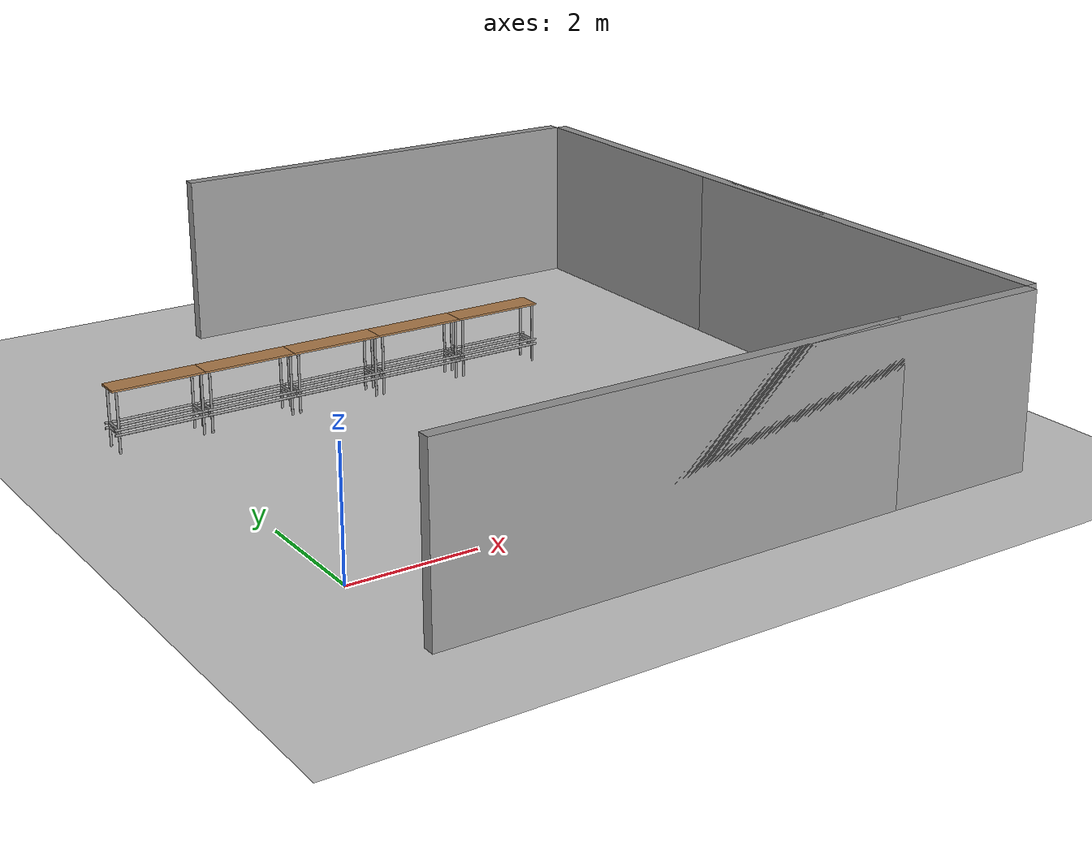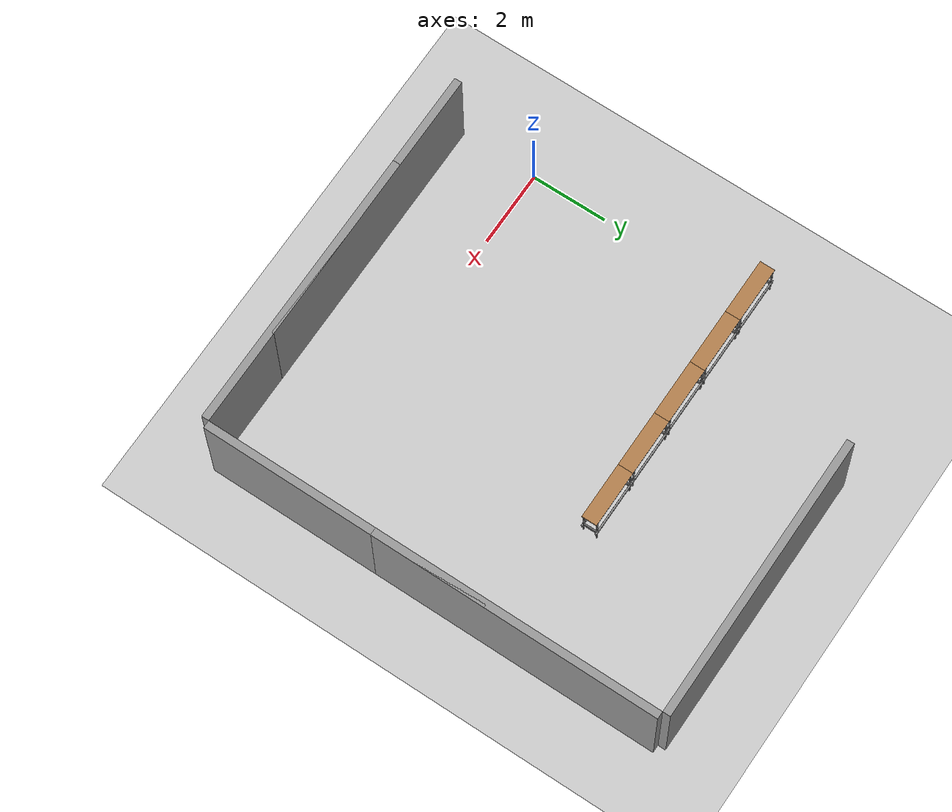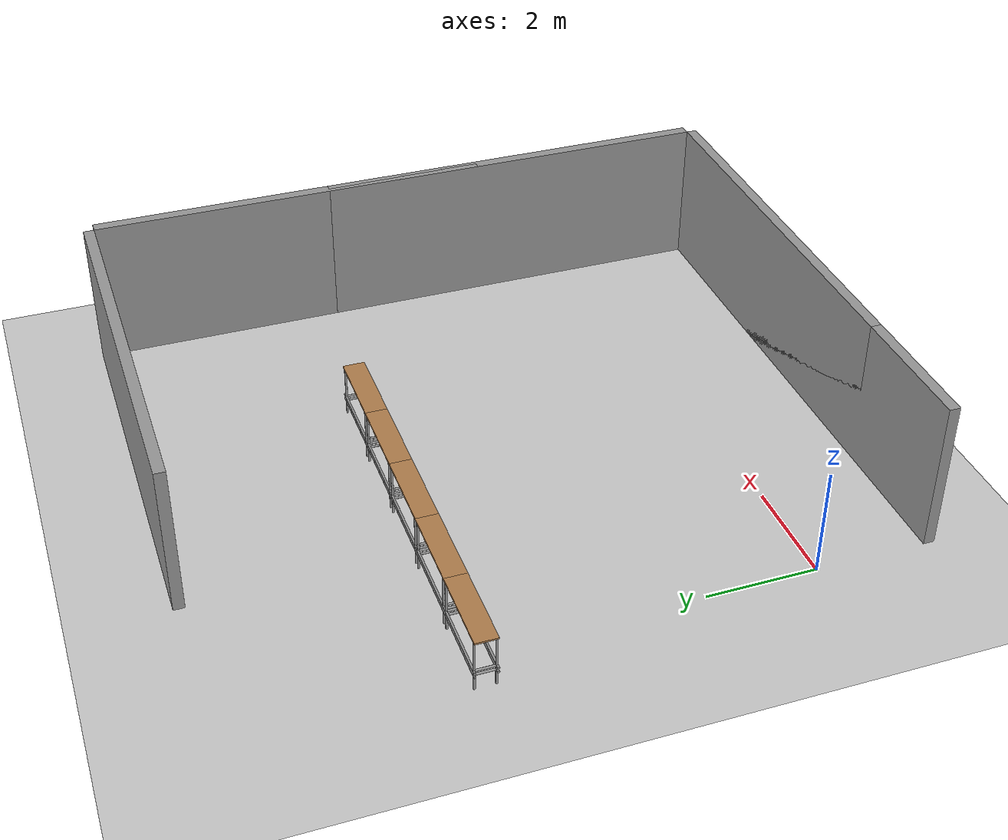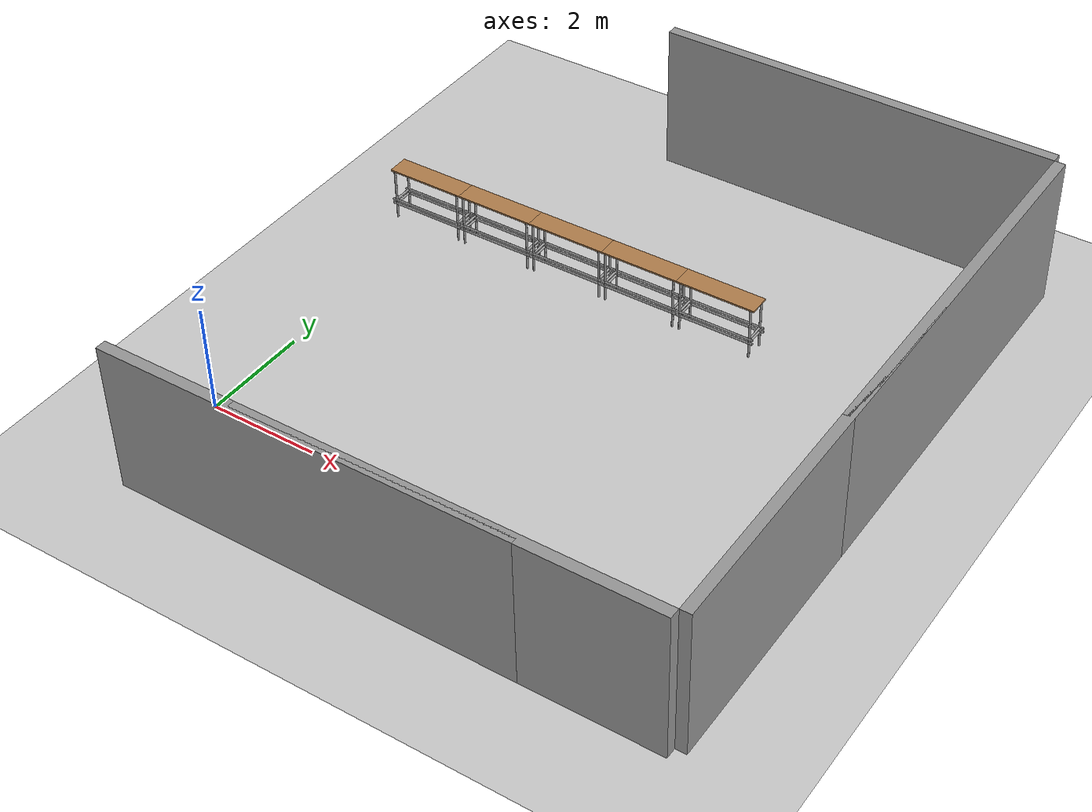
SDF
<sdf version="1.6">
 <world name="default">
  <model name="ground_plane">
   <static>1</static>
   <link name="link">
    <collision name="collision">
     <geometry><plane><normal>0 0 1</normal><size>100 100</size></plane></geometry>
     <surface>
      <contact><collide_bitmask>65535</collide_bitmask></contact>
      <friction><ode><mu>100</mu><mu2>50</mu2></ode></friction>
     </surface>
    </collision>
    <visual name="visual">
     <cast_shadows>0</cast_shadows>
     <geometry><plane><normal>0 0 1</normal><size>100 100</size></plane></geometry>
     <material>
      <script><uri>file://media/materials/scripts/gazebo.material</uri><name>Gazebo/Grey</name></script>
     </material>
    </visual>
   </link>
  </model>
  <model name="grey_wall_0">
   <static>1</static>
   <link name="link">
    <pose>0 0 1.4 0 -0 0</pose>
    <collision name="collision"><geometry><box><size>7.5 0.2 2.8</size></box></geometry></collision>
    <visual name="visual">
     <cast_shadows>0</cast_shadows>
     <geometry><box><size>7.5 0.2 2.8</size></box></geometry>
     <material>
      <script>
       <uri>model://grey_wall/materials/scripts</uri>
       <uri>model://grey_wall/materials/textures</uri>
       <name>vrc/grey_wall</name>
      </script>
     </material>
    </visual>
   </link>
   <pose>3.75 -2.1 0 0 -0 0</pose>
  </model>
  <model name="grey_wall_2">
   <static>1</static>
   <link name="link">
    <pose>0 0 1.4 0 -0 0</pose>
    <collision name="collision"><geometry><box><size>7.5 0.2 2.8</size></box></geometry></collision>
    <visual name="visual">
     <cast_shadows>0</cast_shadows>
     <geometry><box><size>7.5 0.2 2.8</size></box></geometry>
     <material>
      <script>
       <uri>model://grey_wall/materials/scripts</uri>
       <uri>model://grey_wall/materials/textures</uri>
       <name>vrc/grey_wall</name>
      </script>
     </material>
    </visual>
   </link>
   <pose>6.25 -2.1 0 0 -0 0</pose>
  </model>
  <model name="grey_wall_3_clone_clone">
   <static>1</static>
   <link name="link">
    <pose>0 0 1.4 0 -0 0</pose>
    <collision name="collision"><geometry><box><size>7.5 0.2 2.8</size></box></geometry></collision>
    <visual name="visual">
     <cast_shadows>0</cast_shadows>
     <geometry><box><size>7.5 0.2 2.8</size></box></geometry>
     <material>
      <script>
       <uri>model://grey_wall/materials/scripts</uri>
       <uri>model://grey_wall/materials/textures</uri>
       <name>vrc/grey_wall</name>
      </script>
     </material>
    </visual>
   </link>
   <pose>10.1 6.25 0 0 -0 1.5708</pose>
  </model>
  <model name="grey_wall_3_clone_clone_0">
   <static>1</static>
   <link name="link">
    <pose>0 0 1.4 0 -0 0</pose>
    <collision name="collision"><geometry><box><size>7.5 0.2 2.8</size></box></geometry></collision>
    <visual name="visual">
     <cast_shadows>0</cast_shadows>
     <geometry><box><size>7.5 0.2 2.8</size></box></geometry>
     <material>
      <script>
       <uri>model://grey_wall/materials/scripts</uri>
       <uri>model://grey_wall/materials/textures</uri>
       <name>vrc/grey_wall</name>
      </script>
     </material>
    </visual>
   </link>
   <pose>10.1 1.75 0 0 -0 1.5708</pose>
  </model>
  <model name="grey_wall_clone_0">
   <static>1</static>
   <link name="link">
    <pose>0 0 1.4 0 -0 0</pose>
    <collision name="collision"><geometry><box><size>7.5 0.2 2.8</size></box></geometry></collision>
    <visual name="visual">
     <cast_shadows>0</cast_shadows>
     <geometry><box><size>7.5 0.2 2.8</size></box></geometry>
     <material>
      <script>
       <uri>model://grey_wall/materials/scripts</uri>
       <uri>model://grey_wall/materials/textures</uri>
       <name>vrc/grey_wall</name>
      </script>
     </material>
    </visual>
   </link>
   <pose>6.25 10.1 0 0 -0 0</pose>
  </model>
  <model name="table_4">
   <static>1</static>
   <link name="link">
    <collision name="surface">
     <pose>0 0 1 0 -0 0</pose>
     <geometry><box><size>1.5 0.4 0.03</size></box></geometry>
     <surface><friction><ode><mu>0.6</mu><mu2>0.6</mu2></ode></friction></surface>
    </collision>
    <visual name="visual1">
     <pose>0 0 1 0 -0 0</pose>
     <geometry><box><size>1.5 0.4 0.03</size></box></geometry>
     <material>
      <script><uri>file://media/materials/scripts/gazebo.material</uri><name>Gazebo/Wood</name></script>
     </material>
    </visual>
    <collision name="front_left_leg">
     <pose>0.68 0.18 0.5 0 -0 0</pose>
     <geometry><cylinder><radius>0.02</radius><length>1</length></cylinder></geometry>
    </collision>
    <visual name="front_left_leg">
     <pose>0.68 0.18 0.5 0 -0 0</pose>
     <geometry><cylinder><radius>0.02</radius><length>1</length></cylinder></geometry>
     <material>
      <script><uri>file://media/materials/scripts/gazebo.material</uri><name>Gazebo/Grey</name></script>
     </material>
    </visual>
    <collision name="front_right_leg">
     <pose>0.68 -0.18 0.5 0 -0 0</pose>
     <geometry><cylinder><radius>0.02</radius><length>1</length></cylinder></geometry>
    </collision>
    <visual name="front_right_leg">
     <pose>0.68 -0.18 0.5 0 -0 0</pose>
     <geometry><cylinder><radius>0.02</radius><length>1</length></cylinder></geometry>
     <material>
      <script><uri>file://media/materials/scripts/gazebo.material</uri><name>Gazebo/Grey</name></script>
     </material>
    </visual>
    <collision name="back_right_leg">
     <pose>-0.68 -0.18 0.5 0 -0 0</pose>
     <geometry><cylinder><radius>0.02</radius><length>1</length></cylinder></geometry>
    </collision>
    <visual name="back_right_leg">
     <pose>-0.68 -0.18 0.5 0 -0 0</pose>
     <geometry><cylinder><radius>0.02</radius><length>1</length></cylinder></geometry>
     <material>
      <script><uri>file://media/materials/scripts/gazebo.material</uri><name>Gazebo/Grey</name></script>
     </material>
    </visual>
    <collision name="back_left_leg">
     <pose>-0.68 0.18 0.5 0 -0 0</pose>
     <geometry><cylinder><radius>0.02</radius><length>1</length></cylinder></geometry>
    </collision>
    <visual name="back_left_leg">
     <pose>-0.68 0.18 0.5 0 -0 0</pose>
     <geometry><cylinder><radius>0.02</radius><length>1</length></cylinder></geometry>
     <material>
      <script><uri>file://media/materials/scripts/gazebo.material</uri><name>Gazebo/Grey</name></script>
     </material>
    </visual>
    <collision name="back_leg_connector">
     <pose>0 -0.19 0.38 0 1.57 0</pose>
     <geometry><cylinder><radius>0.02</radius><length>1.5</length></cylinder></geometry>
    </collision>
    <visual name="back_leg_connector">
     <pose>0 -0.19 0.38 0 1.57 0</pose>
     <geometry><cylinder><radius>0.02</radius><length>1.5</length></cylinder></geometry>
     <material>
      <script><uri>file://media/materials/scripts/gazebo.material</uri><name>Gazebo/Grey</name></script>
     </material>
    </visual>
    <collision name="front_leg_connector">
     <pose>0 0.19 0.38 0 1.57 0</pose>
     <geometry><cylinder><radius>0.02</radius><length>1.5</length></cylinder></geometry>
    </collision>
    <visual name="front_leg_connector">
     <pose>0 0.19 0.38 0 1.57 0</pose>
     <geometry><cylinder><radius>0.02</radius><length>1.5</length></cylinder></geometry>
     <material>
      <script><uri>file://media/materials/scripts/gazebo.material</uri><name>Gazebo/Grey</name></script>
     </material>
    </visual>
    <collision name="right_leg_connector">
     <pose>-0.68 0 0.38 0 1.57 1.57</pose>
     <geometry><cylinder><radius>0.02</radius><length>0.36</length></cylinder></geometry>
    </collision>
    <visual name="right_leg_connector">
     <pose>-0.68 0 0.38 0 1.57 1.57</pose>
     <geometry><cylinder><radius>0.02</radius><length>0.36</length></cylinder></geometry>
     <material>
      <script><uri>file://media/materials/scripts/gazebo.material</uri><name>Gazebo/Grey</name></script>
     </material>
    </visual>
    <collision name="left_leg_connector">
     <pose>0.68 0 0.38 0 1.57 1.57</pose>
     <geometry><cylinder><radius>0.02</radius><length>0.36</length></cylinder></geometry>
    </collision>
    <visual name="left_leg_connector">
     <pose>0.68 0 0.38 0 1.57 1.57</pose>
     <geometry><cylinder><radius>0.02</radius><length>0.36</length></cylinder></geometry>
     <material>
      <script><uri>file://media/materials/scripts/gazebo.material</uri><name>Gazebo/Grey</name></script>
     </material>
    </visual>
    <collision name="back_leg_connector1">
     <pose>0 -0.19 0.3 0 1.57 0</pose>
     <geometry><cylinder><radius>0.02</radius><length>1.5</length></cylinder></geometry>
    </collision>
    <visual name="back_leg_connector1">
     <pose>0 -0.19 0.3 0 1.57 0</pose>
     <geometry><cylinder><radius>0.02</radius><length>1.5</length></cylinder></geometry>
     <material>
      <script><uri>file://media/materials/scripts/gazebo.material</uri><name>Gazebo/Grey</name></script>
     </material>
    </visual>
    <collision name="front_leg_connector1">
     <pose>0 0.19 0.3 0 1.57 0</pose>
     <geometry><cylinder><radius>0.02</radius><length>1.5</length></cylinder></geometry>
    </collision>
    <visual name="front_leg_connector1">
     <pose>0 0.19 0.3 0 1.57 0</pose>
     <geometry><cylinder><radius>0.02</radius><length>1.5</length></cylinder></geometry>
     <material>
      <script><uri>file://media/materials/scripts/gazebo.material</uri><name>Gazebo/Grey</name></script>
     </material>
    </visual>
    <collision name="right_leg_connector1">
     <pose>-0.68 0 0.3 0 1.57 1.57</pose>
     <geometry><cylinder><radius>0.02</radius><length>0.36</length></cylinder></geometry>
    </collision>
    <visual name="right_leg_connector1">
     <pose>-0.68 0 0.3 0 1.57 1.57</pose>
     <geometry><cylinder><radius>0.02</radius><length>0.36</length></cylinder></geometry>
     <material>
      <script><uri>file://media/materials/scripts/gazebo.material</uri><name>Gazebo/Grey</name></script>
     </material>
    </visual>
    <collision name="left_leg_connector1">
     <pose>0.68 0 0.3 0 1.57 1.57</pose>
     <geometry><cylinder><radius>0.02</radius><length>0.36</length></cylinder></geometry>
    </collision>
    <visual name="left_leg_connector1">
     <pose>0.68 0 0.3 0 1.57 1.57</pose>
     <geometry><cylinder><radius>0.02</radius><length>0.36</length></cylinder></geometry>
     <material>
      <script><uri>file://media/materials/scripts/gazebo.material</uri><name>Gazebo/Grey</name></script>
     </material>
    </visual>
   </link>
   <pose>1.5 6 0 0 -0 0</pose>
  </model>
  <model name="table_5">
   <static>1</static>
   <link name="link">
    <collision name="surface">
     <pose>0 0 1 0 -0 0</pose>
     <geometry><box><size>1.5 0.4 0.03</size></box></geometry>
     <surface><friction><ode><mu>0.6</mu><mu2>0.6</mu2></ode></friction></surface>
    </collision>
    <visual name="visual1">
     <pose>0 0 1 0 -0 0</pose>
     <geometry><box><size>1.5 0.4 0.03</size></box></geometry>
     <material>
      <script><uri>file://media/materials/scripts/gazebo.material</uri><name>Gazebo/Wood</name></script>
     </material>
    </visual>
    <collision name="front_left_leg">
     <pose>0.68 0.18 0.5 0 -0 0</pose>
     <geometry><cylinder><radius>0.02</radius><length>1</length></cylinder></geometry>
    </collision>
    <visual name="front_left_leg">
     <pose>0.68 0.18 0.5 0 -0 0</pose>
     <geometry><cylinder><radius>0.02</radius><length>1</length></cylinder></geometry>
     <material>
      <script><uri>file://media/materials/scripts/gazebo.material</uri><name>Gazebo/Grey</name></script>
     </material>
    </visual>
    <collision name="front_right_leg">
     <pose>0.68 -0.18 0.5 0 -0 0</pose>
     <geometry><cylinder><radius>0.02</radius><length>1</length></cylinder></geometry>
    </collision>
    <visual name="front_right_leg">
     <pose>0.68 -0.18 0.5 0 -0 0</pose>
     <geometry><cylinder><radius>0.02</radius><length>1</length></cylinder></geometry>
     <material>
      <script><uri>file://media/materials/scripts/gazebo.material</uri><name>Gazebo/Grey</name></script>
     </material>
    </visual>
    <collision name="back_right_leg">
     <pose>-0.68 -0.18 0.5 0 -0 0</pose>
     <geometry><cylinder><radius>0.02</radius><length>1</length></cylinder></geometry>
    </collision>
    <visual name="back_right_leg">
     <pose>-0.68 -0.18 0.5 0 -0 0</pose>
     <geometry><cylinder><radius>0.02</radius><length>1</length></cylinder></geometry>
     <material>
      <script><uri>file://media/materials/scripts/gazebo.material</uri><name>Gazebo/Grey</name></script>
     </material>
    </visual>
    <collision name="back_left_leg">
     <pose>-0.68 0.18 0.5 0 -0 0</pose>
     <geometry><cylinder><radius>0.02</radius><length>1</length></cylinder></geometry>
    </collision>
    <visual name="back_left_leg">
     <pose>-0.68 0.18 0.5 0 -0 0</pose>
     <geometry><cylinder><radius>0.02</radius><length>1</length></cylinder></geometry>
     <material>
      <script><uri>file://media/materials/scripts/gazebo.material</uri><name>Gazebo/Grey</name></script>
     </material>
    </visual>
    <collision name="back_leg_connector">
     <pose>0 -0.19 0.38 0 1.57 0</pose>
     <geometry><cylinder><radius>0.02</radius><length>1.5</length></cylinder></geometry>
    </collision>
    <visual name="back_leg_connector">
     <pose>0 -0.19 0.38 0 1.57 0</pose>
     <geometry><cylinder><radius>0.02</radius><length>1.5</length></cylinder></geometry>
     <material>
      <script><uri>file://media/materials/scripts/gazebo.material</uri><name>Gazebo/Grey</name></script>
     </material>
    </visual>
    <collision name="front_leg_connector">
     <pose>0 0.19 0.38 0 1.57 0</pose>
     <geometry><cylinder><radius>0.02</radius><length>1.5</length></cylinder></geometry>
    </collision>
    <visual name="front_leg_connector">
     <pose>0 0.19 0.38 0 1.57 0</pose>
     <geometry><cylinder><radius>0.02</radius><length>1.5</length></cylinder></geometry>
     <material>
      <script><uri>file://media/materials/scripts/gazebo.material</uri><name>Gazebo/Grey</name></script>
     </material>
    </visual>
    <collision name="right_leg_connector">
     <pose>-0.68 0 0.38 0 1.57 1.57</pose>
     <geometry><cylinder><radius>0.02</radius><length>0.36</length></cylinder></geometry>
    </collision>
    <visual name="right_leg_connector">
     <pose>-0.68 0 0.38 0 1.57 1.57</pose>
     <geometry><cylinder><radius>0.02</radius><length>0.36</length></cylinder></geometry>
     <material>
      <script><uri>file://media/materials/scripts/gazebo.material</uri><name>Gazebo/Grey</name></script>
     </material>
    </visual>
    <collision name="left_leg_connector">
     <pose>0.68 0 0.38 0 1.57 1.57</pose>
     <geometry><cylinder><radius>0.02</radius><length>0.36</length></cylinder></geometry>
    </collision>
    <visual name="left_leg_connector">
     <pose>0.68 0 0.38 0 1.57 1.57</pose>
     <geometry><cylinder><radius>0.02</radius><length>0.36</length></cylinder></geometry>
     <material>
      <script><uri>file://media/materials/scripts/gazebo.material</uri><name>Gazebo/Grey</name></script>
     </material>
    </visual>
    <collision name="back_leg_connector1">
     <pose>0 -0.19 0.3 0 1.57 0</pose>
     <geometry><cylinder><radius>0.02</radius><length>1.5</length></cylinder></geometry>
    </collision>
    <visual name="back_leg_connector1">
     <pose>0 -0.19 0.3 0 1.57 0</pose>
     <geometry><cylinder><radius>0.02</radius><length>1.5</length></cylinder></geometry>
     <material>
      <script><uri>file://media/materials/scripts/gazebo.material</uri><name>Gazebo/Grey</name></script>
     </material>
    </visual>
    <collision name="front_leg_connector1">
     <pose>0 0.19 0.3 0 1.57 0</pose>
     <geometry><cylinder><radius>0.02</radius><length>1.5</length></cylinder></geometry>
    </collision>
    <visual name="front_leg_connector1">
     <pose>0 0.19 0.3 0 1.57 0</pose>
     <geometry><cylinder><radius>0.02</radius><length>1.5</length></cylinder></geometry>
     <material>
      <script><uri>file://media/materials/scripts/gazebo.material</uri><name>Gazebo/Grey</name></script>
     </material>
    </visual>
    <collision name="right_leg_connector1">
     <pose>-0.68 0 0.3 0 1.57 1.57</pose>
     <geometry><cylinder><radius>0.02</radius><length>0.36</length></cylinder></geometry>
    </collision>
    <visual name="right_leg_connector1">
     <pose>-0.68 0 0.3 0 1.57 1.57</pose>
     <geometry><cylinder><radius>0.02</radius><length>0.36</length></cylinder></geometry>
     <material>
      <script><uri>file://media/materials/scripts/gazebo.material</uri><name>Gazebo/Grey</name></script>
     </material>
    </visual>
    <collision name="left_leg_connector1">
     <pose>0.68 0 0.3 0 1.57 1.57</pose>
     <geometry><cylinder><radius>0.02</radius><length>0.36</length></cylinder></geometry>
    </collision>
    <visual name="left_leg_connector1">
     <pose>0.68 0 0.3 0 1.57 1.57</pose>
     <geometry><cylinder><radius>0.02</radius><length>0.36</length></cylinder></geometry>
     <material>
      <script><uri>file://media/materials/scripts/gazebo.material</uri><name>Gazebo/Grey</name></script>
     </material>
    </visual>
   </link>
   <pose>3 6 0 0 -0 0</pose>
  </model>
  <model name="table_6">
   <static>1</static>
   <link name="link">
    <collision name="surface">
     <pose>0 0 1 0 -0 0</pose>
     <geometry><box><size>1.5 0.4 0.03</size></box></geometry>
     <surface><friction><ode><mu>0.6</mu><mu2>0.6</mu2></ode></friction></surface>
    </collision>
    <visual name="visual1">
     <pose>0 0 1 0 -0 0</pose>
     <geometry><box><size>1.5 0.4 0.03</size></box></geometry>
     <material>
      <script><uri>file://media/materials/scripts/gazebo.material</uri><name>Gazebo/Wood</name></script>
     </material>
    </visual>
    <collision name="front_left_leg">
     <pose>0.68 0.18 0.5 0 -0 0</pose>
     <geometry><cylinder><radius>0.02</radius><length>1</length></cylinder></geometry>
    </collision>
    <visual name="front_left_leg">
     <pose>0.68 0.18 0.5 0 -0 0</pose>
     <geometry><cylinder><radius>0.02</radius><length>1</length></cylinder></geometry>
     <material>
      <script><uri>file://media/materials/scripts/gazebo.material</uri><name>Gazebo/Grey</name></script>
     </material>
    </visual>
    <collision name="front_right_leg">
     <pose>0.68 -0.18 0.5 0 -0 0</pose>
     <geometry><cylinder><radius>0.02</radius><length>1</length></cylinder></geometry>
    </collision>
    <visual name="front_right_leg">
     <pose>0.68 -0.18 0.5 0 -0 0</pose>
     <geometry><cylinder><radius>0.02</radius><length>1</length></cylinder></geometry>
     <material>
      <script><uri>file://media/materials/scripts/gazebo.material</uri><name>Gazebo/Grey</name></script>
     </material>
    </visual>
    <collision name="back_right_leg">
     <pose>-0.68 -0.18 0.5 0 -0 0</pose>
     <geometry><cylinder><radius>0.02</radius><length>1</length></cylinder></geometry>
    </collision>
    <visual name="back_right_leg">
     <pose>-0.68 -0.18 0.5 0 -0 0</pose>
     <geometry><cylinder><radius>0.02</radius><length>1</length></cylinder></geometry>
     <material>
      <script><uri>file://media/materials/scripts/gazebo.material</uri><name>Gazebo/Grey</name></script>
     </material>
    </visual>
    <collision name="back_left_leg">
     <pose>-0.68 0.18 0.5 0 -0 0</pose>
     <geometry><cylinder><radius>0.02</radius><length>1</length></cylinder></geometry>
    </collision>
    <visual name="back_left_leg">
     <pose>-0.68 0.18 0.5 0 -0 0</pose>
     <geometry><cylinder><radius>0.02</radius><length>1</length></cylinder></geometry>
     <material>
      <script><uri>file://media/materials/scripts/gazebo.material</uri><name>Gazebo/Grey</name></script>
     </material>
    </visual>
    <collision name="back_leg_connector">
     <pose>0 -0.19 0.38 0 1.57 0</pose>
     <geometry><cylinder><radius>0.02</radius><length>1.5</length></cylinder></geometry>
    </collision>
    <visual name="back_leg_connector">
     <pose>0 -0.19 0.38 0 1.57 0</pose>
     <geometry><cylinder><radius>0.02</radius><length>1.5</length></cylinder></geometry>
     <material>
      <script><uri>file://media/materials/scripts/gazebo.material</uri><name>Gazebo/Grey</name></script>
     </material>
    </visual>
    <collision name="front_leg_connector">
     <pose>0 0.19 0.38 0 1.57 0</pose>
     <geometry><cylinder><radius>0.02</radius><length>1.5</length></cylinder></geometry>
    </collision>
    <visual name="front_leg_connector">
     <pose>0 0.19 0.38 0 1.57 0</pose>
     <geometry><cylinder><radius>0.02</radius><length>1.5</length></cylinder></geometry>
     <material>
      <script><uri>file://media/materials/scripts/gazebo.material</uri><name>Gazebo/Grey</name></script>
     </material>
    </visual>
    <collision name="right_leg_connector">
     <pose>-0.68 0 0.38 0 1.57 1.57</pose>
     <geometry><cylinder><radius>0.02</radius><length>0.36</length></cylinder></geometry>
    </collision>
    <visual name="right_leg_connector">
     <pose>-0.68 0 0.38 0 1.57 1.57</pose>
     <geometry><cylinder><radius>0.02</radius><length>0.36</length></cylinder></geometry>
     <material>
      <script><uri>file://media/materials/scripts/gazebo.material</uri><name>Gazebo/Grey</name></script>
     </material>
    </visual>
    <collision name="left_leg_connector">
     <pose>0.68 0 0.38 0 1.57 1.57</pose>
     <geometry><cylinder><radius>0.02</radius><length>0.36</length></cylinder></geometry>
    </collision>
    <visual name="left_leg_connector">
     <pose>0.68 0 0.38 0 1.57 1.57</pose>
     <geometry><cylinder><radius>0.02</radius><length>0.36</length></cylinder></geometry>
     <material>
      <script><uri>file://media/materials/scripts/gazebo.material</uri><name>Gazebo/Grey</name></script>
     </material>
    </visual>
    <collision name="back_leg_connector1">
     <pose>0 -0.19 0.3 0 1.57 0</pose>
     <geometry><cylinder><radius>0.02</radius><length>1.5</length></cylinder></geometry>
    </collision>
    <visual name="back_leg_connector1">
     <pose>0 -0.19 0.3 0 1.57 0</pose>
     <geometry><cylinder><radius>0.02</radius><length>1.5</length></cylinder></geometry>
     <material>
      <script><uri>file://media/materials/scripts/gazebo.material</uri><name>Gazebo/Grey</name></script>
     </material>
    </visual>
    <collision name="front_leg_connector1">
     <pose>0 0.19 0.3 0 1.57 0</pose>
     <geometry><cylinder><radius>0.02</radius><length>1.5</length></cylinder></geometry>
    </collision>
    <visual name="front_leg_connector1">
     <pose>0 0.19 0.3 0 1.57 0</pose>
     <geometry><cylinder><radius>0.02</radius><length>1.5</length></cylinder></geometry>
     <material>
      <script><uri>file://media/materials/scripts/gazebo.material</uri><name>Gazebo/Grey</name></script>
     </material>
    </visual>
    <collision name="right_leg_connector1">
     <pose>-0.68 0 0.3 0 1.57 1.57</pose>
     <geometry><cylinder><radius>0.02</radius><length>0.36</length></cylinder></geometry>
    </collision>
    <visual name="right_leg_connector1">
     <pose>-0.68 0 0.3 0 1.57 1.57</pose>
     <geometry><cylinder><radius>0.02</radius><length>0.36</length></cylinder></geometry>
     <material>
      <script><uri>file://media/materials/scripts/gazebo.material</uri><name>Gazebo/Grey</name></script>
     </material>
    </visual>
    <collision name="left_leg_connector1">
     <pose>0.68 0 0.3 0 1.57 1.57</pose>
     <geometry><cylinder><radius>0.02</radius><length>0.36</length></cylinder></geometry>
    </collision>
    <visual name="left_leg_connector1">
     <pose>0.68 0 0.3 0 1.57 1.57</pose>
     <geometry><cylinder><radius>0.02</radius><length>0.36</length></cylinder></geometry>
     <material>
      <script><uri>file://media/materials/scripts/gazebo.material</uri><name>Gazebo/Grey</name></script>
     </material>
    </visual>
   </link>
   <pose>4.5 6 0 0 -0 0</pose>
  </model>
  <model name="table_7">
   <static>1</static>
   <link name="link">
    <collision name="surface">
     <pose>0 0 1 0 -0 0</pose>
     <geometry><box><size>1.5 0.4 0.03</size></box></geometry>
     <surface><friction><ode><mu>0.6</mu><mu2>0.6</mu2></ode></friction></surface>
    </collision>
    <visual name="visual1">
     <pose>0 0 1 0 -0 0</pose>
     <geometry><box><size>1.5 0.4 0.03</size></box></geometry>
     <material>
      <script><uri>file://media/materials/scripts/gazebo.material</uri><name>Gazebo/Wood</name></script>
     </material>
    </visual>
    <collision name="front_left_leg">
     <pose>0.68 0.18 0.5 0 -0 0</pose>
     <geometry><cylinder><radius>0.02</radius><length>1</length></cylinder></geometry>
    </collision>
    <visual name="front_left_leg">
     <pose>0.68 0.18 0.5 0 -0 0</pose>
     <geometry><cylinder><radius>0.02</radius><length>1</length></cylinder></geometry>
     <material>
      <script><uri>file://media/materials/scripts/gazebo.material</uri><name>Gazebo/Grey</name></script>
     </material>
    </visual>
    <collision name="front_right_leg">
     <pose>0.68 -0.18 0.5 0 -0 0</pose>
     <geometry><cylinder><radius>0.02</radius><length>1</length></cylinder></geometry>
    </collision>
    <visual name="front_right_leg">
     <pose>0.68 -0.18 0.5 0 -0 0</pose>
     <geometry><cylinder><radius>0.02</radius><length>1</length></cylinder></geometry>
     <material>
      <script><uri>file://media/materials/scripts/gazebo.material</uri><name>Gazebo/Grey</name></script>
     </material>
    </visual>
    <collision name="back_right_leg">
     <pose>-0.68 -0.18 0.5 0 -0 0</pose>
     <geometry><cylinder><radius>0.02</radius><length>1</length></cylinder></geometry>
    </collision>
    <visual name="back_right_leg">
     <pose>-0.68 -0.18 0.5 0 -0 0</pose>
     <geometry><cylinder><radius>0.02</radius><length>1</length></cylinder></geometry>
     <material>
      <script><uri>file://media/materials/scripts/gazebo.material</uri><name>Gazebo/Grey</name></script>
     </material>
    </visual>
    <collision name="back_left_leg">
     <pose>-0.68 0.18 0.5 0 -0 0</pose>
     <geometry><cylinder><radius>0.02</radius><length>1</length></cylinder></geometry>
    </collision>
    <visual name="back_left_leg">
     <pose>-0.68 0.18 0.5 0 -0 0</pose>
     <geometry><cylinder><radius>0.02</radius><length>1</length></cylinder></geometry>
     <material>
      <script><uri>file://media/materials/scripts/gazebo.material</uri><name>Gazebo/Grey</name></script>
     </material>
    </visual>
    <collision name="back_leg_connector">
     <pose>0 -0.19 0.38 0 1.57 0</pose>
     <geometry><cylinder><radius>0.02</radius><length>1.5</length></cylinder></geometry>
    </collision>
    <visual name="back_leg_connector">
     <pose>0 -0.19 0.38 0 1.57 0</pose>
     <geometry><cylinder><radius>0.02</radius><length>1.5</length></cylinder></geometry>
     <material>
      <script><uri>file://media/materials/scripts/gazebo.material</uri><name>Gazebo/Grey</name></script>
     </material>
    </visual>
    <collision name="front_leg_connector">
     <pose>0 0.19 0.38 0 1.57 0</pose>
     <geometry><cylinder><radius>0.02</radius><length>1.5</length></cylinder></geometry>
    </collision>
    <visual name="front_leg_connector">
     <pose>0 0.19 0.38 0 1.57 0</pose>
     <geometry><cylinder><radius>0.02</radius><length>1.5</length></cylinder></geometry>
     <material>
      <script><uri>file://media/materials/scripts/gazebo.material</uri><name>Gazebo/Grey</name></script>
     </material>
    </visual>
    <collision name="right_leg_connector">
     <pose>-0.68 0 0.38 0 1.57 1.57</pose>
     <geometry><cylinder><radius>0.02</radius><length>0.36</length></cylinder></geometry>
    </collision>
    <visual name="right_leg_connector">
     <pose>-0.68 0 0.38 0 1.57 1.57</pose>
     <geometry><cylinder><radius>0.02</radius><length>0.36</length></cylinder></geometry>
     <material>
      <script><uri>file://media/materials/scripts/gazebo.material</uri><name>Gazebo/Grey</name></script>
     </material>
    </visual>
    <collision name="left_leg_connector">
     <pose>0.68 0 0.38 0 1.57 1.57</pose>
     <geometry><cylinder><radius>0.02</radius><length>0.36</length></cylinder></geometry>
    </collision>
    <visual name="left_leg_connector">
     <pose>0.68 0 0.38 0 1.57 1.57</pose>
     <geometry><cylinder><radius>0.02</radius><length>0.36</length></cylinder></geometry>
     <material>
      <script><uri>file://media/materials/scripts/gazebo.material</uri><name>Gazebo/Grey</name></script>
     </material>
    </visual>
    <collision name="back_leg_connector1">
     <pose>0 -0.19 0.3 0 1.57 0</pose>
     <geometry><cylinder><radius>0.02</radius><length>1.5</length></cylinder></geometry>
    </collision>
    <visual name="back_leg_connector1">
     <pose>0 -0.19 0.3 0 1.57 0</pose>
     <geometry><cylinder><radius>0.02</radius><length>1.5</length></cylinder></geometry>
     <material>
      <script><uri>file://media/materials/scripts/gazebo.material</uri><name>Gazebo/Grey</name></script>
     </material>
    </visual>
    <collision name="front_leg_connector1">
     <pose>0 0.19 0.3 0 1.57 0</pose>
     <geometry><cylinder><radius>0.02</radius><length>1.5</length></cylinder></geometry>
    </collision>
    <visual name="front_leg_connector1">
     <pose>0 0.19 0.3 0 1.57 0</pose>
     <geometry><cylinder><radius>0.02</radius><length>1.5</length></cylinder></geometry>
     <material>
      <script><uri>file://media/materials/scripts/gazebo.material</uri><name>Gazebo/Grey</name></script>
     </material>
    </visual>
    <collision name="right_leg_connector1">
     <pose>-0.68 0 0.3 0 1.57 1.57</pose>
     <geometry><cylinder><radius>0.02</radius><length>0.36</length></cylinder></geometry>
    </collision>
    <visual name="right_leg_connector1">
     <pose>-0.68 0 0.3 0 1.57 1.57</pose>
     <geometry><cylinder><radius>0.02</radius><length>0.36</length></cylinder></geometry>
     <material>
      <script><uri>file://media/materials/scripts/gazebo.material</uri><name>Gazebo/Grey</name></script>
     </material>
    </visual>
    <collision name="left_leg_connector1">
     <pose>0.68 0 0.3 0 1.57 1.57</pose>
     <geometry><cylinder><radius>0.02</radius><length>0.36</length></cylinder></geometry>
    </collision>
    <visual name="left_leg_connector1">
     <pose>0.68 0 0.3 0 1.57 1.57</pose>
     <geometry><cylinder><radius>0.02</radius><length>0.36</length></cylinder></geometry>
     <material>
      <script><uri>file://media/materials/scripts/gazebo.material</uri><name>Gazebo/Grey</name></script>
     </material>
    </visual>
   </link>
   <pose>6 6 0 0 -0 0</pose>
  </model>
  <model name="table">
   <static>1</static>
   <link name="link">
    <collision name="surface">
     <pose>0 0 1 0 -0 0</pose>
     <geometry><box><size>1.5 0.4 0.03</size></box></geometry>
     <surface><friction><ode><mu>0.6</mu><mu2>0.6</mu2></ode></friction></surface>
    </collision>
    <visual name="visual1">
     <pose>0 0 1 0 -0 0</pose>
     <geometry><box><size>1.5 0.4 0.03</size></box></geometry>
     <material>
      <script><uri>file://media/materials/scripts/gazebo.material</uri><name>Gazebo/Wood</name></script>
     </material>
    </visual>
    <collision name="front_left_leg">
     <pose>0.68 0.18 0.5 0 -0 0</pose>
     <geometry><cylinder><radius>0.02</radius><length>1</length></cylinder></geometry>
    </collision>
    <visual name="front_left_leg">
     <pose>0.68 0.18 0.5 0 -0 0</pose>
     <geometry><cylinder><radius>0.02</radius><length>1</length></cylinder></geometry>
     <material>
      <script><uri>file://media/materials/scripts/gazebo.material</uri><name>Gazebo/Grey</name></script>
     </material>
    </visual>
    <collision name="front_right_leg">
     <pose>0.68 -0.18 0.5 0 -0 0</pose>
     <geometry><cylinder><radius>0.02</radius><length>1</length></cylinder></geometry>
    </collision>
    <visual name="front_right_leg">
     <pose>0.68 -0.18 0.5 0 -0 0</pose>
     <geometry><cylinder><radius>0.02</radius><length>1</length></cylinder></geometry>
     <material>
      <script><uri>file://media/materials/scripts/gazebo.material</uri><name>Gazebo/Grey</name></script>
     </material>
    </visual>
    <collision name="back_right_leg">
     <pose>-0.68 -0.18 0.5 0 -0 0</pose>
     <geometry><cylinder><radius>0.02</radius><length>1</length></cylinder></geometry>
    </collision>
    <visual name="back_right_leg">
     <pose>-0.68 -0.18 0.5 0 -0 0</pose>
     <geometry><cylinder><radius>0.02</radius><length>1</length></cylinder></geometry>
     <material>
      <script><uri>file://media/materials/scripts/gazebo.material</uri><name>Gazebo/Grey</name></script>
     </material>
    </visual>
    <collision name="back_left_leg">
     <pose>-0.68 0.18 0.5 0 -0 0</pose>
     <geometry><cylinder><radius>0.02</radius><length>1</length></cylinder></geometry>
    </collision>
    <visual name="back_left_leg">
     <pose>-0.68 0.18 0.5 0 -0 0</pose>
     <geometry><cylinder><radius>0.02</radius><length>1</length></cylinder></geometry>
     <material>
      <script><uri>file://media/materials/scripts/gazebo.material</uri><name>Gazebo/Grey</name></script>
     </material>
    </visual>
    <collision name="back_leg_connector">
     <pose>0 -0.19 0.38 0 1.57 0</pose>
     <geometry><cylinder><radius>0.02</radius><length>1.5</length></cylinder></geometry>
    </collision>
    <visual name="back_leg_connector">
     <pose>0 -0.19 0.38 0 1.57 0</pose>
     <geometry><cylinder><radius>0.02</radius><length>1.5</length></cylinder></geometry>
     <material>
      <script><uri>file://media/materials/scripts/gazebo.material</uri><name>Gazebo/Grey</name></script>
     </material>
    </visual>
    <collision name="front_leg_connector">
     <pose>0 0.19 0.38 0 1.57 0</pose>
     <geometry><cylinder><radius>0.02</radius><length>1.5</length></cylinder></geometry>
    </collision>
    <visual name="front_leg_connector">
     <pose>0 0.19 0.38 0 1.57 0</pose>
     <geometry><cylinder><radius>0.02</radius><length>1.5</length></cylinder></geometry>
     <material>
      <script><uri>file://media/materials/scripts/gazebo.material</uri><name>Gazebo/Grey</name></script>
     </material>
    </visual>
    <collision name="right_leg_connector">
     <pose>-0.68 0 0.38 0 1.57 1.57</pose>
     <geometry><cylinder><radius>0.02</radius><length>0.36</length></cylinder></geometry>
    </collision>
    <visual name="right_leg_connector">
     <pose>-0.68 0 0.38 0 1.57 1.57</pose>
     <geometry><cylinder><radius>0.02</radius><length>0.36</length></cylinder></geometry>
     <material>
      <script><uri>file://media/materials/scripts/gazebo.material</uri><name>Gazebo/Grey</name></script>
     </material>
    </visual>
    <collision name="left_leg_connector">
     <pose>0.68 0 0.38 0 1.57 1.57</pose>
     <geometry><cylinder><radius>0.02</radius><length>0.36</length></cylinder></geometry>
    </collision>
    <visual name="left_leg_connector">
     <pose>0.68 0 0.38 0 1.57 1.57</pose>
     <geometry><cylinder><radius>0.02</radius><length>0.36</length></cylinder></geometry>
     <material>
      <script><uri>file://media/materials/scripts/gazebo.material</uri><name>Gazebo/Grey</name></script>
     </material>
    </visual>
    <collision name="back_leg_connector1">
     <pose>0 -0.19 0.3 0 1.57 0</pose>
     <geometry><cylinder><radius>0.02</radius><length>1.5</length></cylinder></geometry>
    </collision>
    <visual name="back_leg_connector1">
     <pose>0 -0.19 0.3 0 1.57 0</pose>
     <geometry><cylinder><radius>0.02</radius><length>1.5</length></cylinder></geometry>
     <material>
      <script><uri>file://media/materials/scripts/gazebo.material</uri><name>Gazebo/Grey</name></script>
     </material>
    </visual>
    <collision name="front_leg_connector1">
     <pose>0 0.19 0.3 0 1.57 0</pose>
     <geometry><cylinder><radius>0.02</radius><length>1.5</length></cylinder></geometry>
    </collision>
    <visual name="front_leg_connector1">
     <pose>0 0.19 0.3 0 1.57 0</pose>
     <geometry><cylinder><radius>0.02</radius><length>1.5</length></cylinder></geometry>
     <material>
      <script><uri>file://media/materials/scripts/gazebo.material</uri><name>Gazebo/Grey</name></script>
     </material>
    </visual>
    <collision name="right_leg_connector1">
     <pose>-0.68 0 0.3 0 1.57 1.57</pose>
     <geometry><cylinder><radius>0.02</radius><length>0.36</length></cylinder></geometry>
    </collision>
    <visual name="right_leg_connector1">
     <pose>-0.68 0 0.3 0 1.57 1.57</pose>
     <geometry><cylinder><radius>0.02</radius><length>0.36</length></cylinder></geometry>
     <material>
      <script><uri>file://media/materials/scripts/gazebo.material</uri><name>Gazebo/Grey</name></script>
     </material>
    </visual>
    <collision name="left_leg_connector1">
     <pose>0.68 0 0.3 0 1.57 1.57</pose>
     <geometry><cylinder><radius>0.02</radius><length>0.36</length></cylinder></geometry>
    </collision>
    <visual name="left_leg_connector1">
     <pose>0.68 0 0.3 0 1.57 1.57</pose>
     <geometry><cylinder><radius>0.02</radius><length>0.36</length></cylinder></geometry>
     <material>
      <script><uri>file://media/materials/scripts/gazebo.material</uri><name>Gazebo/Grey</name></script>
     </material>
    </visual>
   </link>
   <pose>0 6 0 0 -0 0</pose>
  </model>
 </world>
</sdf>
